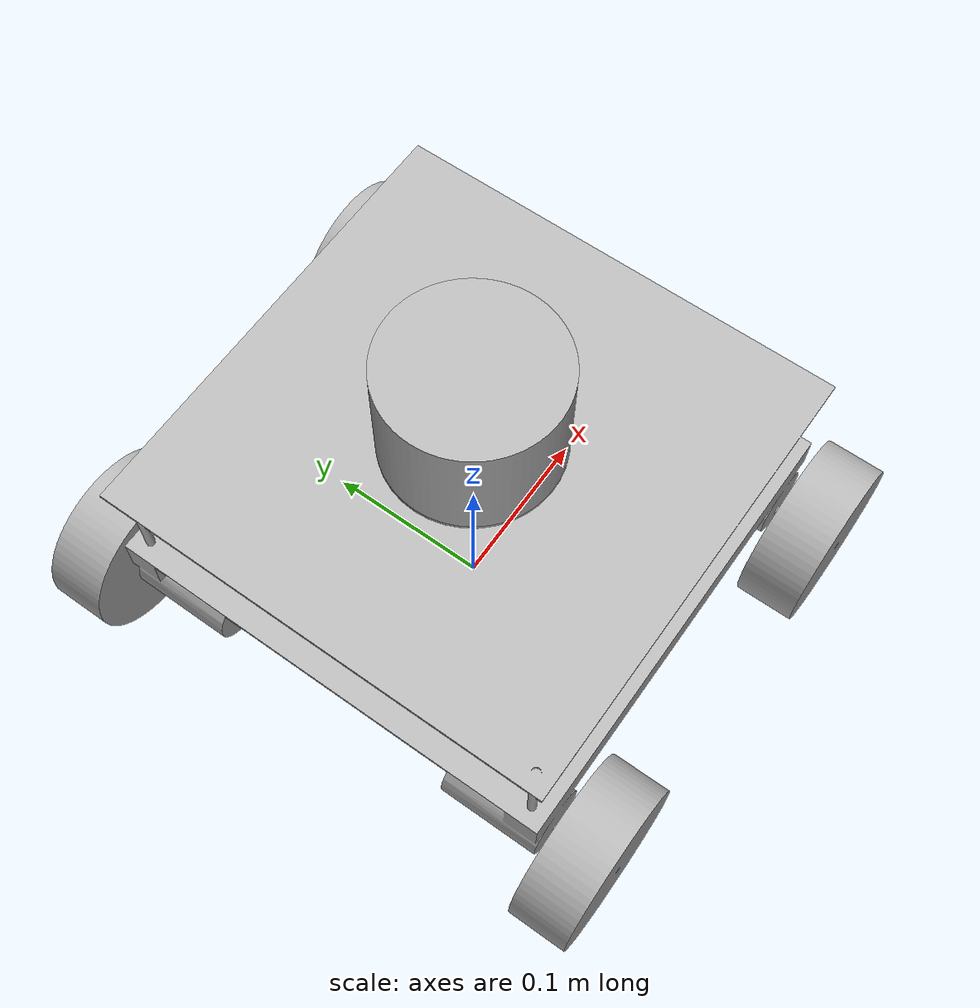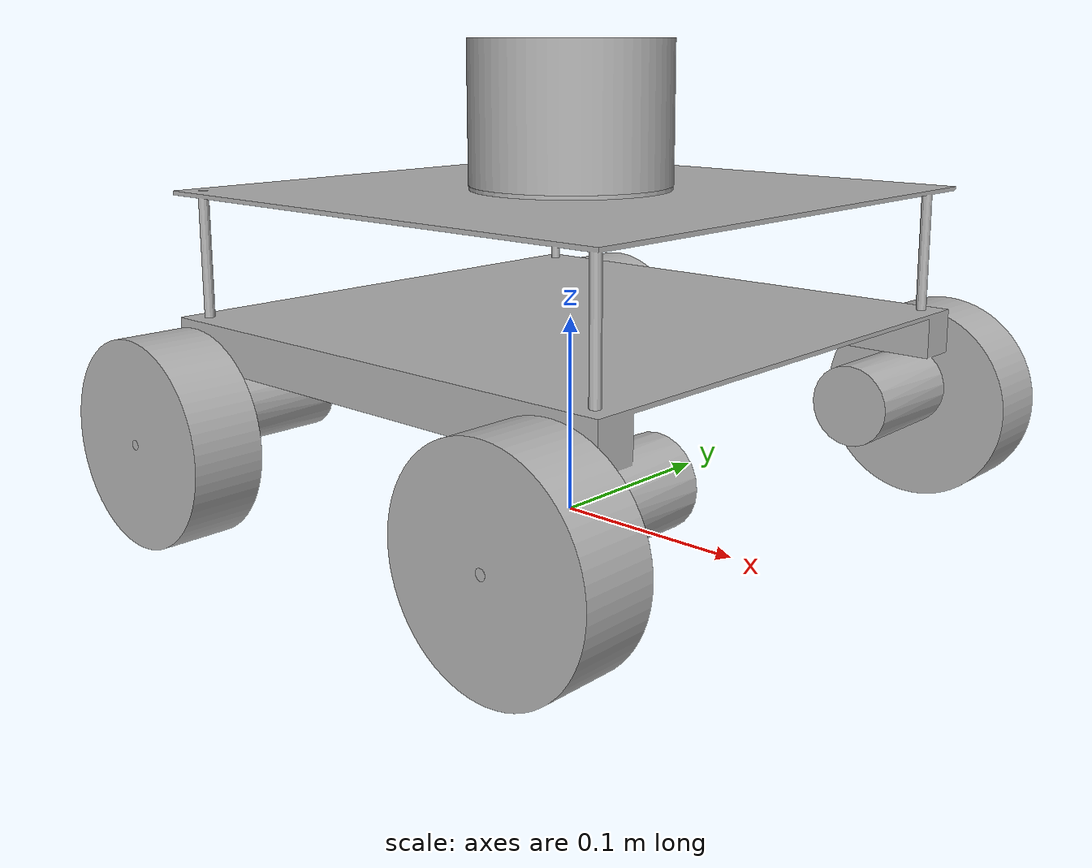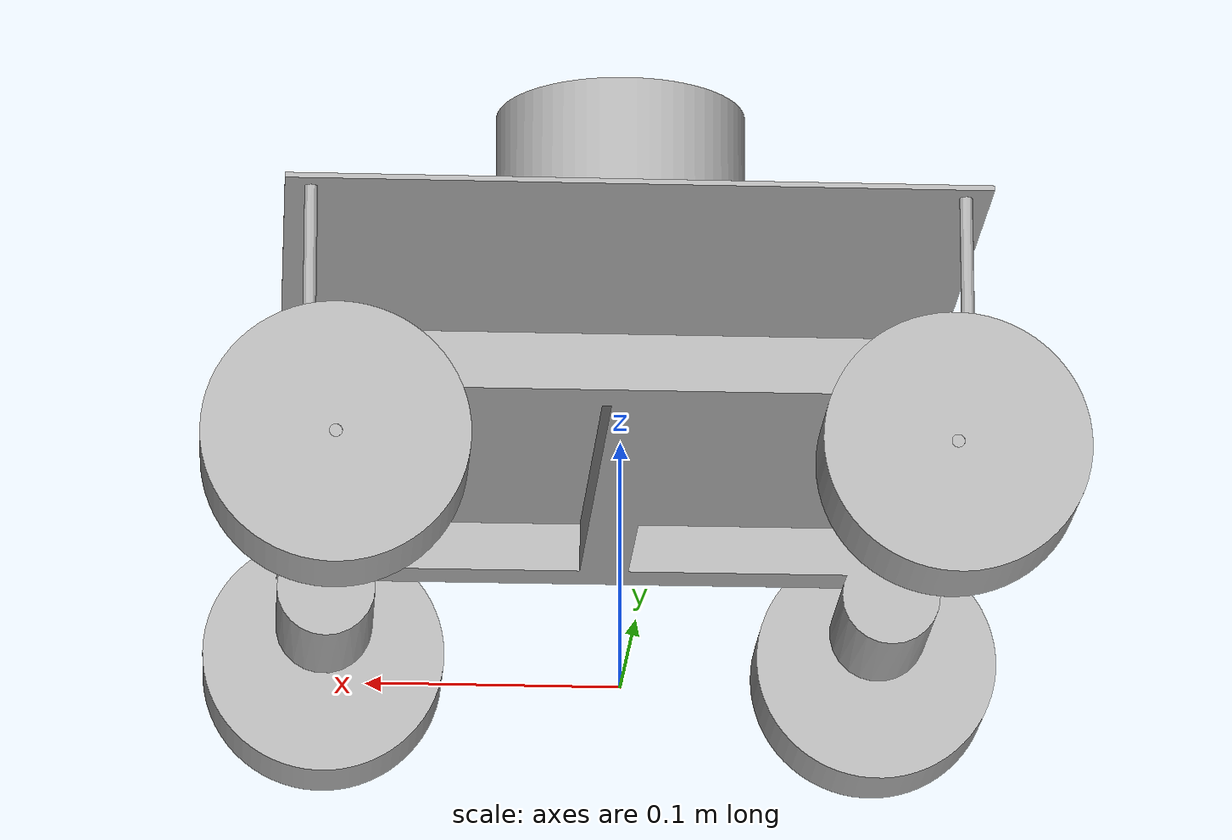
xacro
<?xml version="1.0" ?>
<robot name="test_bot" xmlns:xacro="http://www.ros.org/wiki/xacro">

<xacro:include filename="$(find test_bot_description)/urdf/materials.xacro" />
<xacro:include filename="$(find test_bot_description)/urdf/test_bot.trans" />
<xacro:include filename="$(find test_bot_description)/urdf/test_bot.gazebo" />
<link name="base_link">
  <inertial>
    <origin xyz="5.299616001510307e-06 1.4970156408334876e-05 0.09478457589694943" rpy="0 0 0"/>
    <mass value="7.270938915545308"/>
    <inertia ixx="0.081173" iyy="0.066133" izz="0.128648" ixy="5e-06" iyz="-8e-06" ixz="-3e-06"/>
  </inertial>
  <visual>
    <origin xyz="0 0 0" rpy="0 0 0"/>
    <geometry>
      <mesh filename="package://test_bot_description/meshes/base_link.stl" scale="0.001 0.001 0.001"/>
    </geometry>
    <material name="silver"/>
  </visual>
  <collision>
    <origin xyz="0 0 0" rpy="0 0 0"/>
    <geometry>
      <mesh filename="package://test_bot_description/meshes/base_link.stl" scale="0.001 0.001 0.001"/>
    </geometry>
  </collision>
</link>

<link name="front_right_wheel_1">
  <inertial>
    <origin xyz="-6.800116025829084e-16 0.017499999999999988 6.938893903907228e-18" rpy="0 0 0"/>
    <mass value="2.1524867502996523"/>
    <inertia ixx="0.001568" iyy="0.002697" izz="0.001568" ixy="0.0" iyz="0.0" ixz="-0.0"/>
  </inertial>
  <visual>
    <origin xyz="-0.115 0.175 -0.05" rpy="0 0 0"/>
    <geometry>
      <mesh filename="package://test_bot_description/meshes/front_right_wheel_1.stl" scale="0.001 0.001 0.001"/>
    </geometry>
    <material name="silver"/>
  </visual>
  <collision>
    <origin xyz="-0.115 0.175 -0.05" rpy="0 0 0"/>
    <geometry>
      <mesh filename="package://test_bot_description/meshes/front_right_wheel_1.stl" scale="0.001 0.001 0.001"/>
    </geometry>
  </collision>
</link>

<link name="front_left_wheel_1">
  <inertial>
    <origin xyz="-6.800116025829084e-16 -0.017499999999999988 6.938893903907228e-18" rpy="0 0 0"/>
    <mass value="2.1524867502996523"/>
    <inertia ixx="0.001568" iyy="0.002697" izz="0.001568" ixy="-0.0" iyz="0.0" ixz="-0.0"/>
  </inertial>
  <visual>
    <origin xyz="-0.115 -0.175 -0.05" rpy="0 0 0"/>
    <geometry>
      <mesh filename="package://test_bot_description/meshes/front_left_wheel_1.stl" scale="0.001 0.001 0.001"/>
    </geometry>
    <material name="silver"/>
  </visual>
  <collision>
    <origin xyz="-0.115 -0.175 -0.05" rpy="0 0 0"/>
    <geometry>
      <mesh filename="package://test_bot_description/meshes/front_left_wheel_1.stl" scale="0.001 0.001 0.001"/>
    </geometry>
  </collision>
</link>

<link name="back_left_wheel_1">
  <inertial>
    <origin xyz="-6.522560269672795e-16 -0.017499999999999988 6.938893903907228e-18" rpy="0 0 0"/>
    <mass value="2.1524867502996514"/>
    <inertia ixx="0.001568" iyy="0.002697" izz="0.001568" ixy="-0.0" iyz="0.0" ixz="-0.0"/>
  </inertial>
  <visual>
    <origin xyz="0.115 -0.175 -0.05" rpy="0 0 0"/>
    <geometry>
      <mesh filename="package://test_bot_description/meshes/back_left_wheel_1.stl" scale="0.001 0.001 0.001"/>
    </geometry>
    <material name="silver"/>
  </visual>
  <collision>
    <origin xyz="0.115 -0.175 -0.05" rpy="0 0 0"/>
    <geometry>
      <mesh filename="package://test_bot_description/meshes/back_left_wheel_1.stl" scale="0.001 0.001 0.001"/>
    </geometry>
  </collision>
</link>

<link name="back_right_wheel_1">
  <inertial>
    <origin xyz="-6.522560269672795e-16 0.017499999999999988 6.938893903907228e-18" rpy="0 0 0"/>
    <mass value="2.1524867502996523"/>
    <inertia ixx="0.001568" iyy="0.002697" izz="0.001568" ixy="-0.0" iyz="0.0" ixz="0.0"/>
  </inertial>
  <visual>
    <origin xyz="0.115 0.175 -0.05" rpy="0 0 0"/>
    <geometry>
      <mesh filename="package://test_bot_description/meshes/back_right_wheel_1.stl" scale="0.001 0.001 0.001"/>
    </geometry>
    <material name="silver"/>
  </visual>
  <collision>
    <origin xyz="0.115 0.175 -0.05" rpy="0 0 0"/>
    <geometry>
      <mesh filename="package://test_bot_description/meshes/back_right_wheel_1.stl" scale="0.001 0.001 0.001"/>
    </geometry>
  </collision>
</link>

<link name="lidar_1">
  <inertial>
    <origin xyz="1.4901161100590808e-09 2.1636013104405806e-07 0.035" rpy="0 0 0"/>
    <mass value="4.315762907868978"/>
    <inertia ixx="0.00446" iyy="0.00446" izz="0.005395" ixy="0.0" iyz="0.0" ixz="-0.0"/>
  </inertial>
  <visual>
    <origin xyz="-0.0 -0.00057 -0.283" rpy="0 0 0"/>
    <geometry>
      <mesh filename="package://test_bot_description/meshes/lidar_1.stl" scale="0.001 0.001 0.001"/>
    </geometry>
    <material name="silver"/>
  </visual>
  <collision>
    <origin xyz="-0.0 -0.00057 -0.283" rpy="0 0 0"/>
    <geometry>
      <mesh filename="package://test_bot_description/meshes/lidar_1.stl" scale="0.001 0.001 0.001"/>
    </geometry>
  </collision>
</link>

<joint name="front_right_wheel_joint" type="continuous">
  <origin xyz="0.115 -0.175 0.05" rpy="0 0 0"/>
  <parent link="base_link"/>
  <child link="front_right_wheel_1"/>
  <axis xyz="0.0 1.0 0.0"/>
</joint>

<joint name="front_left_wheel_joint" type="continuous">
  <origin xyz="0.115 0.175 0.05" rpy="0 0 0"/>
  <parent link="base_link"/>
  <child link="front_left_wheel_1"/>
  <axis xyz="0.0 1.0 0.0"/>
</joint>

<joint name="back_left_wheel_joint" type="continuous">
  <origin xyz="-0.115 0.175 0.05" rpy="0 0 0"/>
  <parent link="base_link"/>
  <child link="back_left_wheel_1"/>
  <axis xyz="0.0 1.0 0.0"/>
</joint>

<joint name="back_right_wheel_joint" type="continuous">
  <origin xyz="-0.115 -0.175 0.05" rpy="0 0 0"/>
  <parent link="base_link"/>
  <child link="back_right_wheel_1"/>
  <axis xyz="0.0 1.0 0.0"/>
</joint>

<joint name="lidar_joint" type="fixed">
  <origin xyz="0.0 0.00057 0.283" rpy="0 0 0"/>
  <parent link="base_link"/>
  <child link="lidar_1"/>
</joint>

</robot>

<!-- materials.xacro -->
<robot name="test_bot" xmlns:xacro="http://www.ros.org/wiki/xacro" >

<material name="silver">
  <color rgba="0.700 0.700 0.700 1.000"/>
</material>

</robot>

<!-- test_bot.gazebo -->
<robot name="test_bot" xmlns:xacro="http://www.ros.org/wiki/xacro" >

<xacro:property name="body_color" value="Gazebo/Silver" />

<gazebo>
  <plugin name="control" filename="libgazebo_ros_control.so"/>
</gazebo>
<gazebo reference="base_link">
  <material>${body_color}</material>
  <mu1>0.2</mu1>
  <mu2>0.2</mu2>
  <selfCollide>true</selfCollide>
  <gravity>true</gravity>
</gazebo>

<gazebo reference="front_right_wheel_1">
  <material>${body_color}</material>
  <mu1>0.2</mu1>
  <mu2>0.2</mu2>
  <selfCollide>true</selfCollide>
</gazebo>

<gazebo reference="front_left_wheel_1">
  <material>${body_color}</material>
  <mu1>0.2</mu1>
  <mu2>0.2</mu2>
  <selfCollide>true</selfCollide>
</gazebo>

<gazebo reference="back_left_wheel_1">
  <material>${body_color}</material>
  <mu1>0.2</mu1>
  <mu2>0.2</mu2>
  <selfCollide>true</selfCollide>
</gazebo>

<gazebo reference="back_right_wheel_1">
  <material>${body_color}</material>
  <mu1>0.2</mu1>
  <mu2>0.2</mu2>
  <selfCollide>true</selfCollide>
</gazebo>

<gazebo reference="lidar_1">
  <material>${body_color}</material>
  <mu1>0.2</mu1>
  <mu2>0.2</mu2>
  <selfCollide>true</selfCollide>
</gazebo>

<gazebo>
  <plugin name="skid_steer_drive_controller" filename="libgazebo_ros_skid_steer_drive.so">
    <updateRate>100.0</updateRate>
    <robotNamespace>/</robotNamespace>
    <leftFrontJoint>front_left_wheel_joint</leftFrontJoint>
    <rightFrontJoint>front_right_wheel_joint</rightFrontJoint>
    <leftRearJoint>back_left_wheel_joint</leftRearJoint>
    <rightRearJoint>back_right_wheel_joint</rightRearJoint>
    <wheelSeparation>0.31</wheelSeparation>
    <wheelDiameter>0.1</wheelDiameter>
    <robotBaseFrame>base_link</robotBaseFrame>
    <torque>100</torque>
    <topicName>cmd_vel</topicName>
    <broadcastTF>false</broadcastTF>

    <commandTopic>/cmd_vel</commandTopic>
    <odometryTopic>odom</odometryTopic>
    <odometryFrame>odom</odometryFrame>

    <covariance_x>0.0001</covariance_x>
    <covariance_y>0.0001</covariance_y>
    <covariance_yaw>0.01</covariance_yaw>

  </plugin>
</gazebo>

<gazebo reference="lidar_1">
    <sensor type="ray" name="head_hokuyo_sensor">
      <pose>0 0 0 0 0 0</pose>
      <visualize>true</visualize>
      <update_rate>20</update_rate>
      <ray>
        <scan>
          <horizontal>
            <samples>720</samples>
            <resolution>1</resolution>
            <min_angle>-3.14159</min_angle>
            <max_angle>3.14159</max_angle>
          </horizontal>
        </scan>
        <range>
          <min>0.10</min>
          <max>10.0</max>
          <resolution>0.01</resolution>
        </range>
        <noise>
          <type>gaussian</type>
          <mean>0.0</mean>
          <stddev>0.01</stddev>
        </noise>
      </ray>
      <plugin name="gazebo_ros_head_hokuyo_controller" filename="libgazebo_ros_laser.so">
        <topicName>/scan</topicName>
        <frameName>lidar_1</frameName>
      </plugin>
    </sensor>
</gazebo>

</robot>
